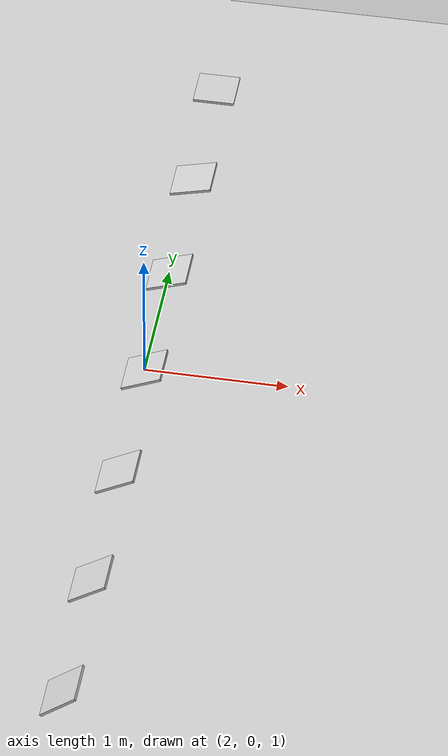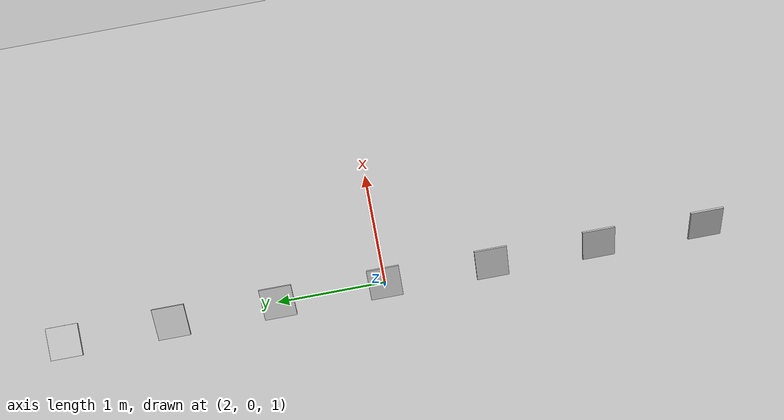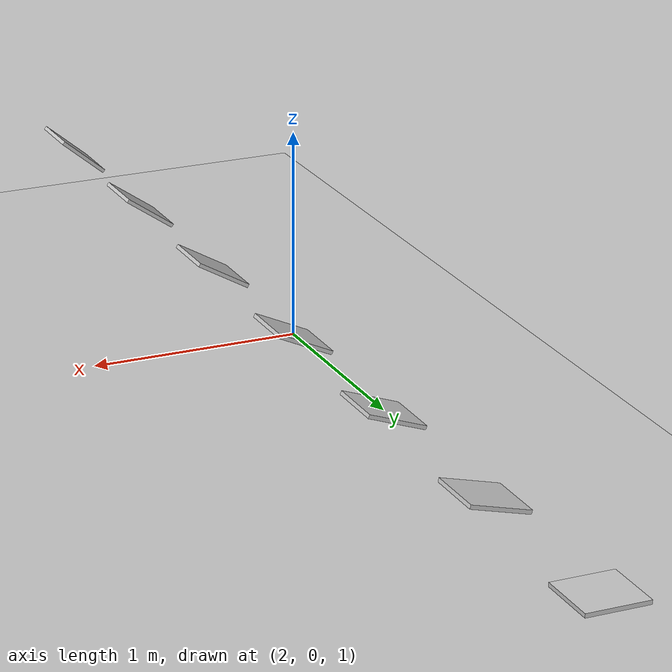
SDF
<?xml version="1.0" ?>
<sdf version="1.9">
  <world name="perch_1_world">
    <physics type="ode">
      <max_step_size>0.001</max_step_size>
      <real_time_factor>1.0</real_time_factor>
      <real_time_update_rate>1000</real_time_update_rate>
    </physics>
    <plugin name='gz::sim::systems::Physics' filename='libgz-sim-physics-system.so'/>
    <plugin name='gz::sim::systems::UserCommands' filename='libgz-sim-user-commands-system.so'/>
    <plugin name='gz::sim::systems::SceneBroadcaster' filename='libgz-sim-scene-broadcaster-system.so'/>
    <plugin name='gz::sim::systems::Contact' filename='libgz-sim-contact-system.so'/>
    <plugin name='gz::sim::systems::Imu' filename='libgz-sim-imu-system.so'/>
    <plugin name='gz::sim::systems::AirPressure' filename='libgz-sim-air-pressure-system.so'/>
    <plugin name='gz::sim::systems::Sensors' filename='libgz-sim-sensors-system.so'>
      <render_engine>ogre2</render_engine>
    </plugin>
    <gravity>0 0 -9.80665</gravity>
    <magnetic_field>6e-06 2.3e-05 -4.2e-05</magnetic_field>
    <atmosphere type='adiabatic'/>
    <scene>
      <grid>false</grid>
      <ambient>0.4 0.4 0.4 1</ambient>
      <background>0.7 0.7 0.7 1</background>
      <shadows>false</shadows>
    </scene>
    <model name="ground_plane">
      <pose>0 0 0 0 0 0</pose>
      <static>true</static>
      <link name="link">
        <collision name="collision">
          <geometry>
            <plane>
              <normal>0 0 1</normal>
              <size>60 60</size>
            </plane>
          </geometry>
        </collision>
        <visual name="visual">
          <geometry>
            <plane>
              <normal>0 0 1</normal>
              <size>60 60</size>
            </plane>
          </geometry>
          <material>
            <ambient>0.8 0.8 0.8 1</ambient>
            <diffuse>0.8 0.8 0.8 1</diffuse>
            <specular>0.8 0.8 0.8 1</specular>
          </material>
        </visual>
      </link>
    </model>
    <include>
      <pose>0 0 0 0 0 0</pose>
      <uri>model://perch_1</uri>
    </include>
    <light type="directional" name="sun">
      <cast_shadows>false</cast_shadows>
      <pose>0 0 100 0 0 0</pose>
      <diffuse>0.8 0.8 0.8 1</diffuse>
      <specular>0.2 0.2 0.2 1</specular>
      <attenuation>
        <range>1000</range>
        <constant>0.9</constant>
        <linear>0.01</linear>
        <quadratic>0.001</quadratic>
      </attenuation>
      <direction>-0.5 0.1 -0.9</direction>
    </light>
  </world>
</sdf>

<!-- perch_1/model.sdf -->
<sdf version="1.9">
  <model name="perch_1">
    <static>true</static>
    <link name="link">
      <collision name="collision">
        <geometry>
          <mesh>
            <uri>model://perch_1/meshes/perch_1.stl</uri>
          </mesh>
        </geometry>
      </collision>

      <!-- Attach collision sensor -->
      <sensor name="contact_sensor" type="contact">
        <always_on>1</always_on>
        <update_rate>30</update_rate>
        <contact>
          <collision>collision</collision>
        </contact>
      </sensor>

      <visual name="visual">
        <geometry>
          <mesh>
            <uri>model://perch_1/meshes/perch_1.stl</uri>
          </mesh>
        </geometry>
        <material>
            <ambient>0.8 0.8 0.8 1</ambient>
            <diffuse>0.8 0.8 0.8 1</diffuse>
            <specular>0.8 0.8 0.8 1</specular>
        </material>
      </visual>
    </link>
  </model>
</sdf>
